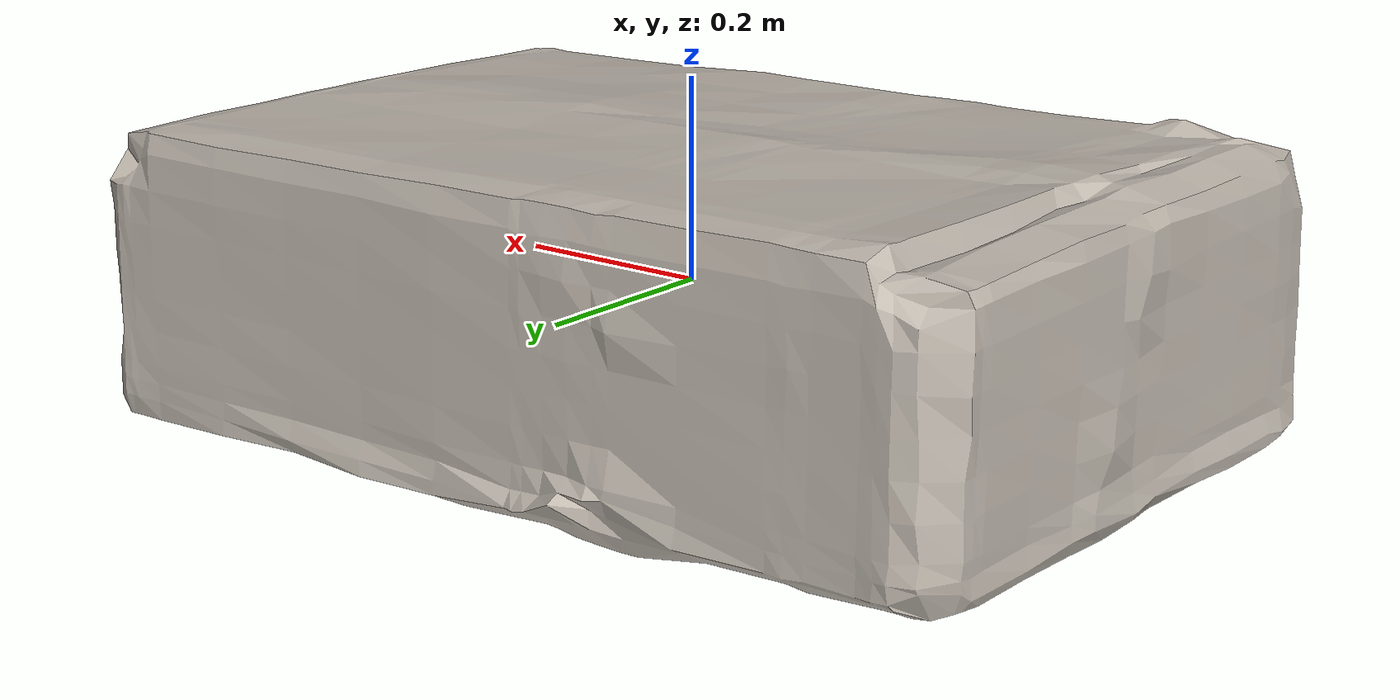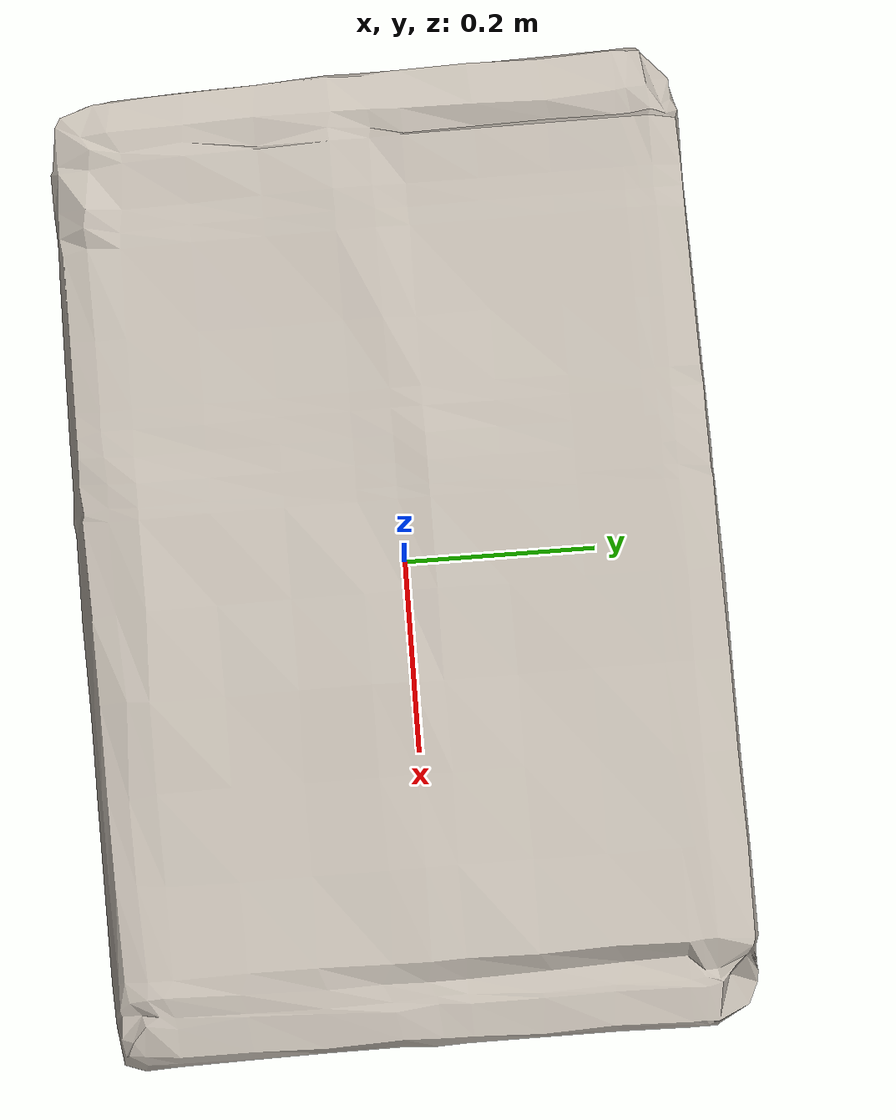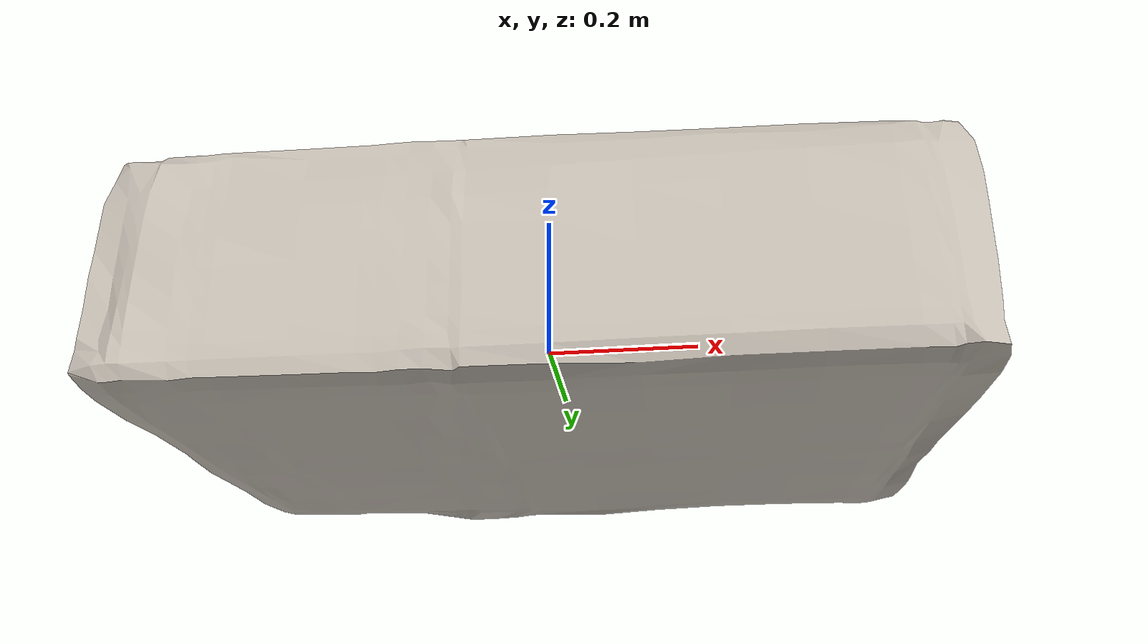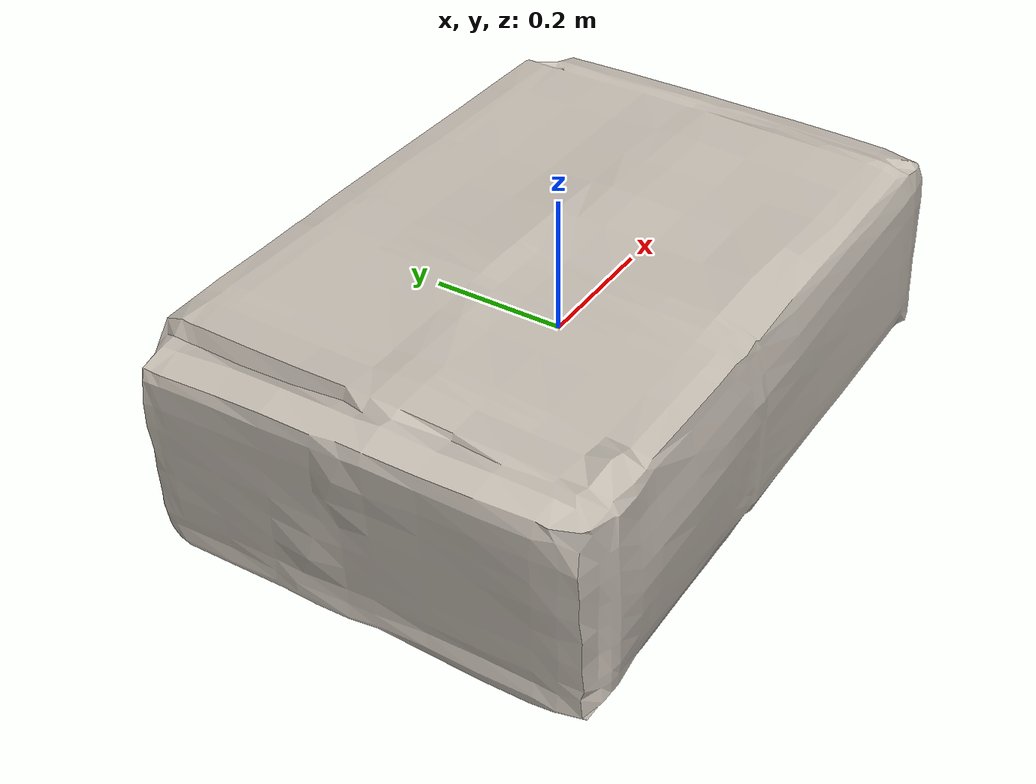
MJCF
<mujoco model="cardboard_box">
  <asset>
  <texture file="visual/ceramic.png" name="tex-cardboard_box" type="2d" />
  <material name="cardboard_box" reflectance="0.5" texrepeat="1 1" texture="tex-cardboard_box" texuniform="false" />
  <mesh file="visual/model_normalized_0.obj" name="model_normalized_0_vis" scale="1.0 1.0 1.0" /><mesh file="collision/model_normalized_collision_22.obj" name="model_normalized_collision_22._coll" scale="1.0 1.0 1.0" /><mesh file="collision/model_normalized_collision_4.obj" name="model_normalized_collision_4._coll" scale="1.0 1.0 1.0" /><mesh file="collision/model_normalized_collision_27.obj" name="model_normalized_collision_27._coll" scale="1.0 1.0 1.0" /><mesh file="collision/model_normalized_collision_6.obj" name="model_normalized_collision_6._coll" scale="1.0 1.0 1.0" /><mesh file="collision/model_normalized_collision_25.obj" name="model_normalized_collision_25._coll" scale="1.0 1.0 1.0" /><mesh file="collision/model_normalized_collision_26.obj" name="model_normalized_collision_26._coll" scale="1.0 1.0 1.0" /><mesh file="collision/model_normalized_collision_29.obj" name="model_normalized_collision_29._coll" scale="1.0 1.0 1.0" /><mesh file="collision/model_normalized_collision_19.obj" name="model_normalized_collision_19._coll" scale="1.0 1.0 1.0" /><mesh file="collision/model_normalized_collision_12.obj" name="model_normalized_collision_12._coll" scale="1.0 1.0 1.0" /><mesh file="collision/model_normalized_collision_17.obj" name="model_normalized_collision_17._coll" scale="1.0 1.0 1.0" /><mesh file="collision/model_normalized_collision_20.obj" name="model_normalized_collision_20._coll" scale="1.0 1.0 1.0" /><mesh file="collision/model_normalized_collision_14.obj" name="model_normalized_collision_14._coll" scale="1.0 1.0 1.0" /><mesh file="collision/model_normalized_collision_18.obj" name="model_normalized_collision_18._coll" scale="1.0 1.0 1.0" /><mesh file="collision/model_normalized_collision_15.obj" name="model_normalized_collision_15._coll" scale="1.0 1.0 1.0" /><mesh file="collision/model_normalized_collision_30.obj" name="model_normalized_collision_30._coll" scale="1.0 1.0 1.0" /><mesh file="collision/model_normalized_collision_31.obj" name="model_normalized_collision_31._coll" scale="1.0 1.0 1.0" /><mesh file="collision/model_normalized_collision_23.obj" name="model_normalized_collision_23._coll" scale="1.0 1.0 1.0" /><mesh file="collision/model_normalized_collision_28.obj" name="model_normalized_collision_28._coll" scale="1.0 1.0 1.0" /><mesh file="collision/model_normalized_collision_13.obj" name="model_normalized_collision_13._coll" scale="1.0 1.0 1.0" /><mesh file="collision/model_normalized_collision_5.obj" name="model_normalized_collision_5._coll" scale="1.0 1.0 1.0" /><mesh file="collision/model_normalized_collision_24.obj" name="model_normalized_collision_24._coll" scale="1.0 1.0 1.0" /><mesh file="collision/model_normalized_collision_16.obj" name="model_normalized_collision_16._coll" scale="1.0 1.0 1.0" /><mesh file="collision/model_normalized_collision_11.obj" name="model_normalized_collision_11._coll" scale="1.0 1.0 1.0" /><mesh file="collision/model_normalized_collision_1.obj" name="model_normalized_collision_1._coll" scale="1.0 1.0 1.0" /><mesh file="collision/model_normalized_collision_10.obj" name="model_normalized_collision_10._coll" scale="1.0 1.0 1.0" /><mesh file="collision/model_normalized_collision_21.obj" name="model_normalized_collision_21._coll" scale="1.0 1.0 1.0" /><mesh file="collision/model_normalized_collision_8.obj" name="model_normalized_collision_8._coll" scale="1.0 1.0 1.0" /><mesh file="collision/model_normalized_collision_7.obj" name="model_normalized_collision_7._coll" scale="1.0 1.0 1.0" /><mesh file="collision/model_normalized_collision_3.obj" name="model_normalized_collision_3._coll" scale="1.0 1.0 1.0" /><mesh file="collision/model_normalized_collision_2.obj" name="model_normalized_collision_2._coll" scale="1.0 1.0 1.0" /><mesh file="collision/model_normalized_collision_9.obj" name="model_normalized_collision_9._coll" scale="1.0 1.0 1.0" /><mesh file="collision/model_normalized_collision_0.obj" name="model_normalized_collision_0._coll" scale="1.0 1.0 1.0" /><texture type="2d" name="Box_baked_u0_v0" file="visual/Box_baked_u0_v0.png" /><material name="Box_baked_u0_v0" texture="Box_baked_u0_v0" specular="0.4000000000000001" shininess="0.001" /></asset>
  <worldbody>
    <body>
      <body name="object">
      <geom solimp="0.998 0.998 0.001" solref="0.001 1" density="100" friction="0.95 0.3 0.1" type="mesh" mesh="model_normalized_0_vis" conaffinity="0" contype="0" group="1" material="Box_baked_u0_v0" /><geom solimp="0.998 0.998 0.001" solref="0.001 1" density="100" friction="0.95 0.3 0.1" type="mesh" mesh="model_normalized_collision_22._coll" group="0" rgba="0.8 0.8 0.8 0.0" /><geom solimp="0.998 0.998 0.001" solref="0.001 1" density="100" friction="0.95 0.3 0.1" type="mesh" mesh="model_normalized_collision_4._coll" group="0" rgba="0.8 0.8 0.8 0.0" /><geom solimp="0.998 0.998 0.001" solref="0.001 1" density="100" friction="0.95 0.3 0.1" type="mesh" mesh="model_normalized_collision_27._coll" group="0" rgba="0.8 0.8 0.8 0.0" /><geom solimp="0.998 0.998 0.001" solref="0.001 1" density="100" friction="0.95 0.3 0.1" type="mesh" mesh="model_normalized_collision_6._coll" group="0" rgba="0.8 0.8 0.8 0.0" /><geom solimp="0.998 0.998 0.001" solref="0.001 1" density="100" friction="0.95 0.3 0.1" type="mesh" mesh="model_normalized_collision_25._coll" group="0" rgba="0.8 0.8 0.8 0.0" /><geom solimp="0.998 0.998 0.001" solref="0.001 1" density="100" friction="0.95 0.3 0.1" type="mesh" mesh="model_normalized_collision_26._coll" group="0" rgba="0.8 0.8 0.8 0.0" /><geom solimp="0.998 0.998 0.001" solref="0.001 1" density="100" friction="0.95 0.3 0.1" type="mesh" mesh="model_normalized_collision_29._coll" group="0" rgba="0.8 0.8 0.8 0.0" /><geom solimp="0.998 0.998 0.001" solref="0.001 1" density="100" friction="0.95 0.3 0.1" type="mesh" mesh="model_normalized_collision_19._coll" group="0" rgba="0.8 0.8 0.8 0.0" /><geom solimp="0.998 0.998 0.001" solref="0.001 1" density="100" friction="0.95 0.3 0.1" type="mesh" mesh="model_normalized_collision_12._coll" group="0" rgba="0.8 0.8 0.8 0.0" /><geom solimp="0.998 0.998 0.001" solref="0.001 1" density="100" friction="0.95 0.3 0.1" type="mesh" mesh="model_normalized_collision_17._coll" group="0" rgba="0.8 0.8 0.8 0.0" /><geom solimp="0.998 0.998 0.001" solref="0.001 1" density="100" friction="0.95 0.3 0.1" type="mesh" mesh="model_normalized_collision_20._coll" group="0" rgba="0.8 0.8 0.8 0.0" /><geom solimp="0.998 0.998 0.001" solref="0.001 1" density="100" friction="0.95 0.3 0.1" type="mesh" mesh="model_normalized_collision_14._coll" group="0" rgba="0.8 0.8 0.8 0.0" /><geom solimp="0.998 0.998 0.001" solref="0.001 1" density="100" friction="0.95 0.3 0.1" type="mesh" mesh="model_normalized_collision_18._coll" group="0" rgba="0.8 0.8 0.8 0.0" /><geom solimp="0.998 0.998 0.001" solref="0.001 1" density="100" friction="0.95 0.3 0.1" type="mesh" mesh="model_normalized_collision_15._coll" group="0" rgba="0.8 0.8 0.8 0.0" /><geom solimp="0.998 0.998 0.001" solref="0.001 1" density="100" friction="0.95 0.3 0.1" type="mesh" mesh="model_normalized_collision_30._coll" group="0" rgba="0.8 0.8 0.8 0.0" /><geom solimp="0.998 0.998 0.001" solref="0.001 1" density="100" friction="0.95 0.3 0.1" type="mesh" mesh="model_normalized_collision_31._coll" group="0" rgba="0.8 0.8 0.8 0.0" /><geom solimp="0.998 0.998 0.001" solref="0.001 1" density="100" friction="0.95 0.3 0.1" type="mesh" mesh="model_normalized_collision_23._coll" group="0" rgba="0.8 0.8 0.8 0.0" /><geom solimp="0.998 0.998 0.001" solref="0.001 1" density="100" friction="0.95 0.3 0.1" type="mesh" mesh="model_normalized_collision_28._coll" group="0" rgba="0.8 0.8 0.8 0.0" /><geom solimp="0.998 0.998 0.001" solref="0.001 1" density="100" friction="0.95 0.3 0.1" type="mesh" mesh="model_normalized_collision_13._coll" group="0" rgba="0.8 0.8 0.8 0.0" /><geom solimp="0.998 0.998 0.001" solref="0.001 1" density="100" friction="0.95 0.3 0.1" type="mesh" mesh="model_normalized_collision_5._coll" group="0" rgba="0.8 0.8 0.8 0.0" /><geom solimp="0.998 0.998 0.001" solref="0.001 1" density="100" friction="0.95 0.3 0.1" type="mesh" mesh="model_normalized_collision_24._coll" group="0" rgba="0.8 0.8 0.8 0.0" /><geom solimp="0.998 0.998 0.001" solref="0.001 1" density="100" friction="0.95 0.3 0.1" type="mesh" mesh="model_normalized_collision_16._coll" group="0" rgba="0.8 0.8 0.8 0.0" /><geom solimp="0.998 0.998 0.001" solref="0.001 1" density="100" friction="0.95 0.3 0.1" type="mesh" mesh="model_normalized_collision_11._coll" group="0" rgba="0.8 0.8 0.8 0.0" /><geom solimp="0.998 0.998 0.001" solref="0.001 1" density="100" friction="0.95 0.3 0.1" type="mesh" mesh="model_normalized_collision_1._coll" group="0" rgba="0.8 0.8 0.8 0.0" /><geom solimp="0.998 0.998 0.001" solref="0.001 1" density="100" friction="0.95 0.3 0.1" type="mesh" mesh="model_normalized_collision_10._coll" group="0" rgba="0.8 0.8 0.8 0.0" /><geom solimp="0.998 0.998 0.001" solref="0.001 1" density="100" friction="0.95 0.3 0.1" type="mesh" mesh="model_normalized_collision_21._coll" group="0" rgba="0.8 0.8 0.8 0.0" /><geom solimp="0.998 0.998 0.001" solref="0.001 1" density="100" friction="0.95 0.3 0.1" type="mesh" mesh="model_normalized_collision_8._coll" group="0" rgba="0.8 0.8 0.8 0.0" /><geom solimp="0.998 0.998 0.001" solref="0.001 1" density="100" friction="0.95 0.3 0.1" type="mesh" mesh="model_normalized_collision_7._coll" group="0" rgba="0.8 0.8 0.8 0.0" /><geom solimp="0.998 0.998 0.001" solref="0.001 1" density="100" friction="0.95 0.3 0.1" type="mesh" mesh="model_normalized_collision_3._coll" group="0" rgba="0.8 0.8 0.8 0.0" /><geom solimp="0.998 0.998 0.001" solref="0.001 1" density="100" friction="0.95 0.3 0.1" type="mesh" mesh="model_normalized_collision_2._coll" group="0" rgba="0.8 0.8 0.8 0.0" /><geom solimp="0.998 0.998 0.001" solref="0.001 1" density="100" friction="0.95 0.3 0.1" type="mesh" mesh="model_normalized_collision_9._coll" group="0" rgba="0.8 0.8 0.8 0.0" /><geom solimp="0.998 0.998 0.001" solref="0.001 1" density="100" friction="0.95 0.3 0.1" type="mesh" mesh="model_normalized_collision_0._coll" group="0" rgba="0.8 0.8 0.8 0.0" /></body>
      <site rgba="0 0 0 0" size="0.005" pos="2.5613179355232774e-09 -0.0005944716513329729 -0.16999149130176422" name="bottom_site" />
      <site rgba="0 0 0 0" size="0.005" pos="2.5613179355232774e-09 -0.0005944716513329729 0.16334184373911437" name="top_site" />
      <site rgba="0 0 0 0" size="0.005" pos="0.5075757586623773 0.34789037559166436 -0.00332482378132494" name="horizontal_radius_site" />
    </body>
  </worldbody>
</mujoco>
